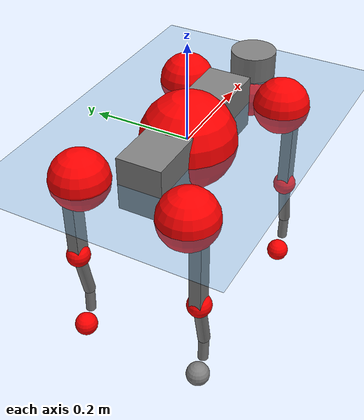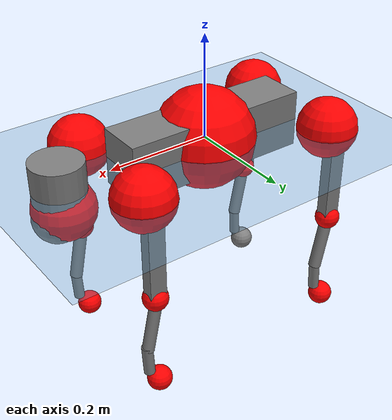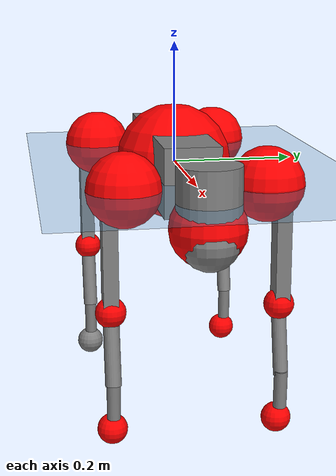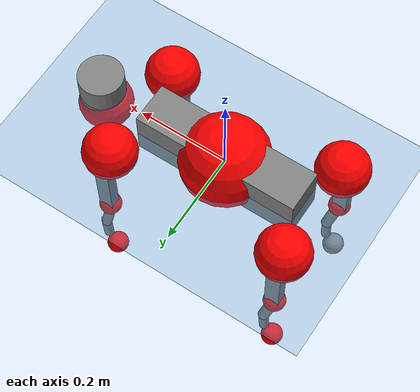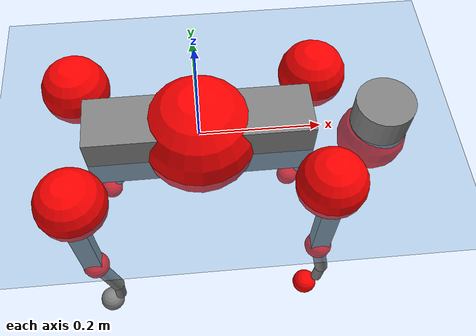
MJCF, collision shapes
<mujoco model="go2">
  <compiler angle="radian" assetdir="assets" balanceinertia="true" inertiafromgeom="false"/>

  <option timestep="0.005" density="1.2" viscosity="2e-05"/>

  <size nkey="1"/>

  <visual>
    <quality shadowsize="8192"/>
    <map shadowclip="0.5"/>
  </visual>

  <default>
    <default class="/">
      <geom contype="0" conaffinity="0" group="1" solref="-1000 -80"/>
      <site size="0.01 0.005 0.005" group="5"/>
      <general forcelimited="true" biastype="affine" gainprm="20" biasprm="0 -20 -0.5"/>
      <default class="go2">
        <joint armature="0.01" damping="0.01" frictionloss="0.2"/>
        <geom condim="1" margin="0.001"/>
        <default class="visual">
          <geom type="mesh" group="2"/>
        </default>
        <default class="collision">
          <geom group="3"/>
          <default class="foot">
            <geom size="0.022 0 0" condim="6" priority="1" friction="0.8 0.02 0.01" solimp="0.015 1 0.022"/>
          </default>
        </default>
        <default class="reward_collision_sphere">
          <geom group="5" rgba="1 0 0 1"/>
        </default>
      </default>
    </default>
  </default>

  <asset>
    <texture type="skybox" colorspace="auto" name="//unnamed_texture_0" builtin="gradient" rgb1="0.95 0.95 0.95" rgb2="0.95 0.95 0.95" width="100" height="600"/>
    <texture type="2d" colorspace="auto" name="texplane" builtin="checker" rgb1="0.345 0.575 0.748" rgb2="0.345 0.575 0.748" markrgb="1 1 1" width="512" height="512"/>
    <material name="MatPlane" class="/" texture="texplane" texuniform="true" texrepeat="2 2" specular="0.9"/>
    <material name="metal" class="/" rgba="0.9 0.95 0.95 1"/>
    <material name="black" class="/" rgba="0 0 0 1"/>
    <material name="white" class="/"/>
    <material name="gray" class="/" rgba="0.671705 0.692426 0.77427 1"/>
    <mesh name="base_0" class="/" file="base_0.obj"/>
    <mesh name="base_1" class="/" file="base_1.obj"/>
    <mesh name="base_2" class="/" file="base_2.obj"/>
    <mesh name="base_3" class="/" file="base_3.obj"/>
    <mesh name="base_4" class="/" file="base_4.obj"/>
    <mesh name="hip_0" class="/" file="hip_0.obj"/>
    <mesh name="hip_1" class="/" file="hip_1.obj"/>
    <mesh name="thigh_0" class="/" file="thigh_0.obj"/>
    <mesh name="thigh_1" class="/" file="thigh_1.obj"/>
    <mesh name="thigh_mirror_0" class="/" file="thigh_mirror_0.obj"/>
    <mesh name="thigh_mirror_1" class="/" file="thigh_mirror_1.obj"/>
    <mesh name="calf_0" class="/" file="calf_0.obj"/>
    <mesh name="calf_1" class="/" file="calf_1.obj"/>
    <mesh name="calf_mirror_0" class="/" file="calf_mirror_0.obj"/>
    <mesh name="calf_mirror_1" class="/" file="calf_mirror_1.obj"/>
    <mesh name="foot" class="/" file="foot.obj"/>
  </asset>

  <worldbody>
    <geom name="floor" class="/" size="100 100 0.125" type="plane" group="0" material="MatPlane"/>
    <light name="toplight_shadow" class="/" pos="0 0 5" dir="0.0990148 0.0990148 -0.990148" type="directional" ambient="0.04 0.04 0.04" diffuse="0.55 0.55 0.55" specular="0.12 0.12 0.12"/>
    <light name="toplight_fill" class="/" pos="0 0 5" dir="0.0990148 0.0990148 -0.990148" type="directional" castshadow="false" ambient="0.04 0.04 0.04" diffuse="0.3 0.3 0.3" specular="0.08 0.08 0.08"/>
    <body name="trunk" childclass="go2" pos="-0.000345299 -0.00188882 0.000687848" quat="1 -0.000211468 -0.000602136 0.00071464">
      <inertial pos="0.0210603 -0.00261672 -0.00277358" quat="-0.00437286 0.714294 0.00224286 0.699828" mass="6.20718" diaginertia="0.128584 0.0670725 0.015609"/>
      <joint name="//unnamed_joint_0" type="free" armature="0" damping="0" frictionloss="0"/>
      <geom name="//unnamed_geom_1" class="visual" material="black" mesh="base_0"/>
      <geom name="//unnamed_geom_2" class="visual" material="black" mesh="base_1"/>
      <geom name="//unnamed_geom_3" class="visual" material="black" mesh="base_2"/>
      <geom name="//unnamed_geom_4" class="visual" material="white" mesh="base_3"/>
      <geom name="//unnamed_geom_5" class="visual" material="gray" mesh="base_4"/>
      <geom name="trunk_1" class="collision" size="0.181804 0.0451852 0.0550921" type="box"/>
      <geom name="trunk_2" class="collision" size="0.0483264 0.0434937" pos="0.299694 0 0.00914809" type="cylinder"/>
      <geom name="trunk_3" class="collision" size="0.0454268" pos="0.308106 0 -0.0548886"/>
      <geom name="//unnamed_geom_9" class="reward_collision_sphere" size="0.0966528"/>
      <geom name="//unnamed_geom_10" class="reward_collision_sphere" size="0.0579917" pos="0.294436 0 -0.0411664"/>
      <site name="imu" pos="-0.0252596 0.00159154 0.0403675" size="0.00966528"/>
      <camera name="track" pos="0 -1.86643 0" quat="0.707107 0.707107 0 0" mode="trackcom"/>
      <camera name="ego_camera" pos="0.328086 0 0.0411664" quat="-0.5 -0.5 0.5 0.5"/>
      <body name="FL_hip" pos="0.203507 0.0446302 0.0002383" quat="1 0.000104144 5.01533e-05 6.00061e-05">
        <inertial pos="-0.00546222 -0.000480374 -6.49557e-06" quat="0.494197 0.497423 0.515578 0.492462" mass="0.608" diaginertia="0.00111855 0.000413682 0.000301689"/>
        <joint name="FL_hip_joint" pos="0 0 0" axis="0.999962 0.00864478 -0.00130688" stiffness="0.0154263" range="-1.06777 1.06981" armature="0.00935166" damping="0.00241823" frictionloss="0.193443"/>
        <geom name="//unnamed_geom_11" class="visual" material="metal" mesh="hip_0"/>
        <geom name="//unnamed_geom_12" class="visual" material="gray" mesh="hip_1"/>
        <geom name="//unnamed_geom_13" class="collision" size="0.0444603 0.0193306" pos="0 0.0746573 0" quat="0.707107 0.707107 0 0" type="cylinder"/>
        <geom name="//unnamed_geom_14" class="reward_collision_sphere" size="0.0579917" pos="0 0.0653251 0"/>
        <body name="FL_thigh" pos="0.00138292 0.0898306 -2.71523e-05" quat="0.999999 0.00102065 0.000728996 -0.000514457">
          <inertial pos="-0.00465442 -0.0181499 -0.02935" quat="0.829521 0.0846936 -0.0200974 0.551651" mass="1.05282" diaginertia="0.00739157 0.00427344 0.000564101"/>
          <joint name="FL_thigh_joint" pos="0 0 0" axis="0.000937592 0.999893 0.0145785" stiffness="0.00594401" range="-1.60783 3.43626" armature="0.0109112" damping="0.00127518" frictionloss="0.181774"/>
          <geom name="//unnamed_geom_15" class="visual" material="metal" mesh="thigh_0"/>
          <geom name="//unnamed_geom_16" class="visual" material="gray" mesh="thigh_1"/>
          <geom name="//unnamed_geom_17" class="collision" size="0.102935 0.01184 0.016431" pos="0 0 -0.0974272" quat="0.707107 0 0.707107 0" type="box"/>
          <body name="FL_calf" pos="-0.00112497 -0.00189082 -0.193959" quat="1 -2.94203e-05 0.000171326 0.000103011">
            <inertial pos="0.0039683 -0.00202976 -0.131279" quat="0.710359 0.00255179 -0.00320082 0.703827" mass="0.212155" diaginertia="0.00188136 0.00104907 3.34724e-05"/>
            <joint name="FL_calf_joint" pos="0 0 0" axis="0.00392142 0.999933 -0.0109141" stiffness="0.0115068" range="-2.67265 -0.78707" armature="0.00907619" damping="0" frictionloss="0.18803"/>
            <geom name="//unnamed_geom_18" class="visual" material="gray" mesh="calf_0"/>
            <geom name="//unnamed_geom_19" class="visual" material="black" mesh="calf_1"/>
            <geom name="FL_calf0" class="collision" size="0.0115983 0.0579917" pos="0.00841246 0 -0.0548886" quat="0.994493 0 -0.104807 0" type="cylinder"/>
            <geom name="//unnamed_geom_21" class="collision" size="0.0106318 0.0314121" pos="0.0210312 0 -0.135392" quat="0.999688 0 0.0249974 0" type="cylinder"/>
            <geom name="//unnamed_geom_22" class="visual" pos="0 0 -0.194854" quat="1 0 0 0" material="black" mesh="foot"/>
            <geom name="FL_foot" class="foot" size="0.0173096" pos="-0.00210312 0 -0.194854"/>
            <geom name="//unnamed_geom_24" class="reward_collision_sphere" size="0.0241632"/>
            <geom name="//unnamed_geom_25" class="reward_collision_sphere" size="0.0241632" pos="-0.00210312 0 -0.194854"/>
            <site name="FL_foot" class="foot" pos="-0.00210312 0 -0.194854" size="0.00966528"/>
          </body>
        </body>
      </body>
      <body name="FR_hip" pos="0.201014 -0.0437405 -0.00153649" quat="1 0.000409775 -4.74071e-05 -0.000381923">
        <inertial pos="-0.00505172 -0.00194605 0.000403056" quat="0.498783 0.494719 0.50742 0.498992" mass="0.616889" diaginertia="0.0011129 0.000421608 0.000307622"/>
        <joint name="FR_hip_joint" pos="0 0 0" axis="0.999981 0.00250107 0.00564788" range="-1.06245 1.10321" armature="0.00945789" damping="0.00632409" frictionloss="0.185234"/>
        <geom name="//unnamed_geom_26" class="visual" pos="0 1.60351e-10 6.87778e-09" quat="4.63268e-05 1 0 0" material="metal" mesh="hip_0"/>
        <geom name="//unnamed_geom_27" class="visual" pos="0 2.59948e-10 -1.70114e-08" quat="4.63268e-05 1 0 0" material="gray" mesh="hip_1"/>
        <geom name="//unnamed_geom_28" class="collision" size="0.0444603 0.0193306" pos="0 -0.0746573 0" quat="0.707107 0.707107 0 0" type="cylinder"/>
        <geom name="//unnamed_geom_29" class="reward_collision_sphere" size="0.0579917" pos="0 -0.0653251 0"/>
        <body name="FR_thigh" pos="0.00085399 -0.0886708 0.000325752" quat="1 -0.000270587 0.000218454 6.94445e-06">
          <inertial pos="-0.00276423 0.0192761 -0.02714" quat="0.550875 -0.0189821 0.0859421 0.829934" mass="1.03037" diaginertia="0.00747435 0.00414232 0.000564038"/>
          <joint name="FR_thigh_joint" pos="0 0 0" axis="-0.00547821 -0.999981 0.00272163" stiffness="0.0112814" range="-3.50202 1.55883" armature="0.00845064" damping="0.0263278" frictionloss="0.178129"/>
          <geom name="//unnamed_geom_30" class="visual" material="metal" mesh="thigh_mirror_0"/>
          <geom name="//unnamed_geom_31" class="visual" material="gray" mesh="thigh_mirror_1"/>
          <geom name="//unnamed_geom_32" class="collision" size="0.102935 0.01184 0.016431" pos="0 0 -0.0974272" quat="0.707107 0 0.707107 0" type="box"/>
          <body name="FR_calf" pos="-0.000349385 0.000334564 -0.191371" quat="1 -0.000532281 -8.45484e-05 6.70167e-05">
            <inertial pos="0.0050058 0.00257813 -0.129934" quat="0.703409 -0.00421403 0.00216276 0.710769" mass="0.224843" diaginertia="0.00198128 0.00109783 3.45024e-05"/>
            <joint name="FR_calf_joint" pos="0 0 0" axis="0.00892434 -0.999956 0.00288229" stiffness="0.000512801" range="0.821855 2.70439" armature="0.0101025" damping="0" frictionloss="0.195795"/>
            <geom name="//unnamed_geom_33" class="visual" material="gray" mesh="calf_mirror_0"/>
            <geom name="//unnamed_geom_34" class="visual" material="black" mesh="calf_mirror_1"/>
            <geom name="FR_calf0" class="collision" size="0.0125649 0.0579917" pos="0.0105156 0 -0.0548886" quat="0.995004 0 -0.0998334 0" type="cylinder"/>
            <geom name="//unnamed_geom_36" class="collision" size="0.0106318 0.0314121" pos="0.0210312 0 -0.135392" quat="0.999688 0 0.0249974 0" type="cylinder"/>
            <geom name="//unnamed_geom_37" class="visual" pos="0 0 -0.194854" quat="1 0 0 0" material="black" mesh="foot"/>
            <geom name="FR_foot" class="foot" size="0.0199789" pos="-0.00210312 0 -0.194854"/>
            <geom name="//unnamed_geom_39" class="reward_collision_sphere" size="0.0241632"/>
            <geom name="//unnamed_geom_40" class="reward_collision_sphere" size="0.0241632" pos="-0.00210312 0 -0.194854"/>
            <site name="FR_foot" class="foot" pos="-0.00210312 0 -0.194854" size="0.00966528"/>
          </body>
        </body>
      </body>
      <body name="RL_hip" pos="-0.204042 0.044098 0.00187113" quat="1 3.52456e-05 -1.92044e-05 1.26323e-05">
        <inertial pos="0.00465721 0.00313033 0.00182974" quat="0.500966 0.49923 0.498631 0.501168" mass="0.593308" diaginertia="0.00115315 0.000418442 0.000312686"/>
        <joint name="RL_hip_joint" pos="0 0 0" axis="-0.999911 -0.000735812 0.0133134" stiffness="0.0128356" range="-0.995445 1.04939" armature="0.0101882" damping="0.0120052" frictionloss="0.216337"/>
        <geom name="//unnamed_geom_41" class="visual" pos="-1.1913e-09 0 -2.33521e-07" quat="4.63268e-05 0 1 0" material="metal" mesh="hip_0"/>
        <geom name="//unnamed_geom_42" class="visual" pos="-1.93123e-09 0 -2.071e-07" quat="4.63268e-05 0 1 0" material="gray" mesh="hip_1"/>
        <geom name="//unnamed_geom_43" class="collision" size="0.0444603 0.0193306" pos="0 0.0746573 0" quat="0.707107 0.707107 0 0" type="cylinder"/>
        <geom name="//unnamed_geom_44" class="reward_collision_sphere" size="0.0579917" pos="0 0.0653251 0"/>
        <body name="RL_thigh" pos="-0.00017641 0.0883989 0.00200371" quat="0.999999 -0.00021653 -0.00062798 0.00123655">
          <inertial pos="-0.00401692 -0.0182129 -0.0300414" quat="0.827031 0.0869042 -0.0310325 0.554531" mass="1.00266" diaginertia="0.00752346 0.00418815 0.000580553"/>
          <joint name="RL_thigh_joint" pos="0 0 0" axis="7.86558e-05 0.999945 -0.0104934" stiffness="0.00539836" range="-0.509442 4.52944" armature="0.0105608" damping="0.0220045" frictionloss="0.18188"/>
          <geom name="//unnamed_geom_45" class="visual" material="metal" mesh="thigh_0"/>
          <geom name="//unnamed_geom_46" class="visual" material="gray" mesh="thigh_1"/>
          <geom name="//unnamed_geom_47" class="collision" size="0.102935 0.01184 0.016431" pos="0 0 -0.0974272" quat="0.707107 0 0.707107 0" type="box"/>
          <body name="RL_calf" pos="-0.00161536 -0.00037236 -0.192763" quat="1 0.000290137 -7.54361e-05 -0.000511303">
            <inertial pos="0.00718401 0.00213655 -0.128874" quat="0.710582 0.0012873 -0.00356212 0.703604" mass="0.217249" diaginertia="0.0018423 0.000994973 3.26213e-05"/>
            <joint name="RL_calf_joint" pos="0 0 0" axis="-0.0182082 0.999834 -0.00112827" stiffness="0.0122218" range="-2.66894 -0.833948" armature="0.0109288" damping="0.00783919" frictionloss="0.176793"/>
            <geom name="//unnamed_geom_48" class="visual" material="gray" mesh="calf_0"/>
            <geom name="//unnamed_geom_49" class="visual" material="black" mesh="calf_1"/>
            <geom name="RL_calf0" class="collision" size="0.0125649 0.0579917" pos="0.0105156 0 -0.0548886" quat="0.995004 0 -0.0998334 0" type="cylinder"/>
            <geom name="//unnamed_geom_51" class="collision" size="0.0106318 0.0314121" pos="0.0210312 0 -0.135392" quat="0.999688 0 0.0249974 0" type="cylinder"/>
            <geom name="//unnamed_geom_52" class="visual" pos="0 0 -0.194854" quat="1 0 0 0" material="black" mesh="foot"/>
            <geom name="RL_foot" class="foot" size="0.0185213" pos="-0.00210312 0 -0.194854"/>
            <geom name="//unnamed_geom_54" class="reward_collision_sphere" size="0.0241632"/>
            <geom name="//unnamed_geom_55" class="reward_collision_sphere" size="0.0241632" pos="-0.00210312 0 -0.194854"/>
            <site name="RL_foot" class="foot" pos="-0.00210312 0 -0.194854" size="0.00966528"/>
          </body>
        </body>
      </body>
      <body name="RR_hip" pos="-0.205927 -0.0445615 -0.00215048" quat="0.999999 0.000674294 -3.28667e-05 0.00100697">
        <inertial pos="0.00575071 -0.00108048 -3.36902e-05" quat="0.498835 0.497019 0.498559 0.505544" mass="0.604598" diaginertia="0.00112349 0.000414123 0.000313881"/>
        <joint name="RR_hip_joint" pos="0 0 0" axis="-1 0.00057714 0.0003164" stiffness="0.00987619" range="-1.02553 1.08518" armature="0.0109871" damping="0.00815906" frictionloss="0.208188"/>
        <geom name="//unnamed_geom_56" class="visual" pos="1.1872e-09 1.60351e-10 -2.40399e-07" quat="2.14617e-09 4.63268e-05 4.63268e-05 -1" material="metal" mesh="hip_0"/>
        <geom name="//unnamed_geom_57" class="visual" pos="1.94137e-09 2.59948e-10 -1.90089e-07" quat="2.14617e-09 4.63268e-05 4.63268e-05 -1" material="gray" mesh="hip_1"/>
        <geom name="//unnamed_geom_58" class="collision" size="0.0444603 0.0193306" pos="0 -0.0746573 0" quat="0.707107 0.707107 0 0" type="cylinder"/>
        <geom name="//unnamed_geom_59" class="reward_collision_sphere" size="0.0579917" pos="0 -0.0653251 0"/>
        <body name="RR_thigh" pos="-0.00141886 -0.0873184 -0.00175405" quat="1 0.000128504 -8.55547e-05 9.33166e-05">
          <inertial pos="-0.00407427 0.0186172 -0.0305627" quat="0.554029 -0.0187882 0.0815557 0.82828" mass="1.01684" diaginertia="0.00759116 0.00412104 0.000543017"/>
          <joint name="RR_thigh_joint" pos="0 0 0" axis="-0.0038837 -0.999988 0.00313622" stiffness="0.010049" range="-4.53091 0.575671" armature="0.00837975" damping="0.024595" frictionloss="0.192198"/>
          <geom name="//unnamed_geom_60" class="visual" material="metal" mesh="thigh_mirror_0"/>
          <geom name="//unnamed_geom_61" class="visual" material="gray" mesh="thigh_mirror_1"/>
          <geom name="//unnamed_geom_62" class="collision" size="0.102935 0.01184 0.016431" pos="0 0 -0.0974272" quat="0.707107 0 0.707107 0" type="box"/>
          <body name="RR_calf" pos="0.00303642 -0.000114348 -0.195987" quat="1 0.000169181 0.000113894 0.000201827">
            <inertial pos="0.00536296 8.31975e-05 -0.129089" quat="0.703275 -0.0038878 0.00191793 0.710904" mass="0.223248" diaginertia="0.00189776 0.0010457 3.41887e-05"/>
            <joint name="RR_calf_joint" pos="0 0 0" axis="0.00600514 -0.99998 0.00174304" range="0.890365 2.73886" armature="0.00974572" damping="0.0156886" frictionloss="0.204132"/>
            <geom name="//unnamed_geom_63" class="visual" material="gray" mesh="calf_mirror_0"/>
            <geom name="//unnamed_geom_64" class="visual" material="black" mesh="calf_mirror_1"/>
            <geom name="RR_calf0" class="collision" size="0.0125649 0.0579917" pos="0.0105156 0 -0.0548886" quat="0.995004 0 -0.0998334 0" type="cylinder"/>
            <geom name="//unnamed_geom_66" class="collision" size="0.0106318 0.0314121" pos="0.0210312 0 -0.135392" quat="0.999688 0 0.0249974 0" type="cylinder"/>
            <geom name="//unnamed_geom_67" class="visual" pos="0 0 -0.194854" quat="1 0 0 0" material="black" mesh="foot"/>
            <geom name="RR_foot" class="foot" size="0.0241938" pos="-0.00210312 0 -0.194854"/>
            <geom name="//unnamed_geom_69" class="reward_collision_sphere" size="0.0241632"/>
            <geom name="//unnamed_geom_70" class="reward_collision_sphere" size="0.0241632" pos="-0.00210312 0 -0.194854"/>
            <site name="RR_foot" class="foot" pos="-0.00210312 0 -0.194854" size="0.00966528"/>
          </body>
        </body>
      </body>
    </body>
  </worldbody>

  <contact>
    <pair class="/" geom1="floor" geom2="FL_foot" name="//unnamed_contact_0"/>
    <pair class="/" geom1="floor" geom2="FR_foot" name="//unnamed_contact_1"/>
    <pair class="/" geom1="floor" geom2="RL_foot" name="//unnamed_contact_2"/>
    <pair class="/" geom1="floor" geom2="RR_foot" name="//unnamed_contact_3"/>
  </contact>

  <actuator>
    <general name="FL_hip" class="/" joint="FL_hip_joint" forcerange="-23.3205 23.3205" gainprm="19.425" biasprm="0 -19.425 -0.488029"/>
    <general name="FL_thigh" class="/" joint="FL_thigh_joint" forcerange="-23.1956 23.1956" gainprm="19.425" biasprm="0 -19.425 -0.488029"/>
    <general name="FL_calf" class="/" joint="FL_calf_joint" forcerange="-44.5294 44.5294" gainprm="19.425" biasprm="0 -19.425 -0.488029"/>
    <general name="FR_hip" class="/" joint="FR_hip_joint" forcerange="-22.1428 22.1428" gainprm="19.425" biasprm="0 -19.425 -0.488029"/>
    <general name="FR_thigh" class="/" joint="FR_thigh_joint" forcerange="-22.3934 22.3934" gainprm="19.425" biasprm="0 -19.425 -0.488029"/>
    <general name="FR_calf" class="/" joint="FR_calf_joint" forcerange="-39.9172 39.9172" gainprm="19.425" biasprm="0 -19.425 -0.488029"/>
    <general name="RL_hip" class="/" joint="RL_hip_joint" forcerange="-23.3513 23.3513" gainprm="19.425" biasprm="0 -19.425 -0.488029"/>
    <general name="RL_thigh" class="/" joint="RL_thigh_joint" forcerange="-22.4892 22.4892" gainprm="19.425" biasprm="0 -19.425 -0.488029"/>
    <general name="RL_calf" class="/" joint="RL_calf_joint" forcerange="-42.6558 42.6558" gainprm="19.425" biasprm="0 -19.425 -0.488029"/>
    <general name="RR_hip" class="/" joint="RR_hip_joint" forcerange="-22.3293 22.3293" gainprm="19.425" biasprm="0 -19.425 -0.488029"/>
    <general name="RR_thigh" class="/" joint="RR_thigh_joint" forcerange="-22.6882 22.6882" gainprm="19.425" biasprm="0 -19.425 -0.488029"/>
    <general name="RR_calf" class="/" joint="RR_calf_joint" forcerange="-48.4475 48.4475" gainprm="19.425" biasprm="0 -19.425 -0.488029"/>
  </actuator>

  <sensor>
    <gyro site="imu" name="imu_angular_velocity"/>
    <velocimeter site="imu" name="imu_linear_velocity"/>
    <framelinvel objtype="site" objname="FL_foot" name="FL_foot_global_linear_velocity"/>
    <framelinvel objtype="site" objname="FR_foot" name="FR_foot_global_linear_velocity"/>
    <framelinvel objtype="site" objname="RL_foot" name="RL_foot_global_linear_velocity"/>
    <framelinvel objtype="site" objname="RR_foot" name="RR_foot_global_linear_velocity"/>
  </sensor>

  <keyframe>
    <key name="home" qpos="0 0 0.325 1 0 0 0 0.1 0.8 -1.5 -0.1 -0.8 1.5 -0.1 0.8 -1.5 0.1 -0.8 1.5"/>
  </keyframe>
</mujoco>
